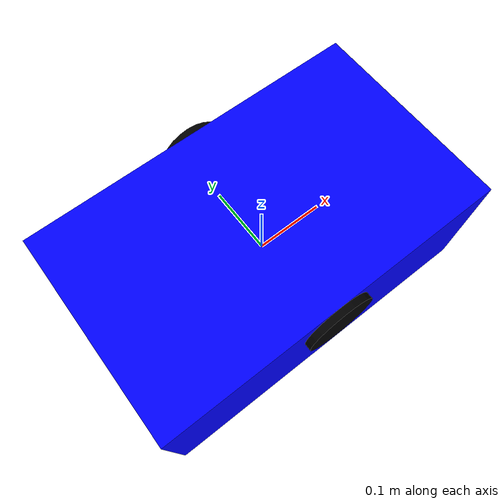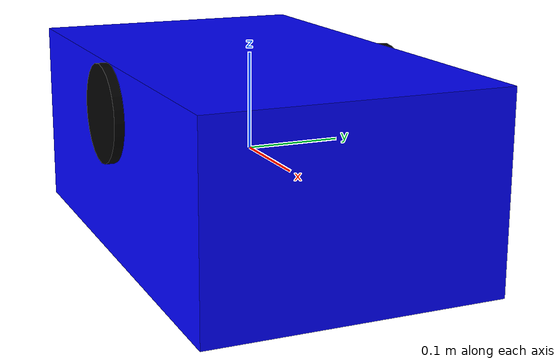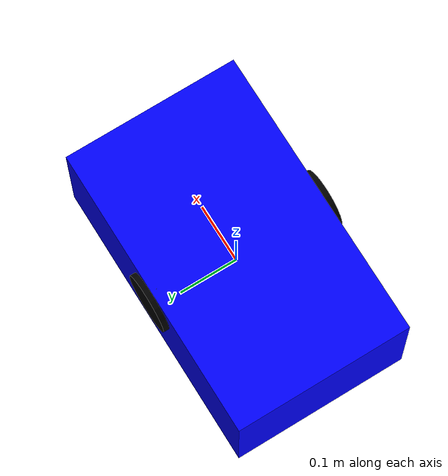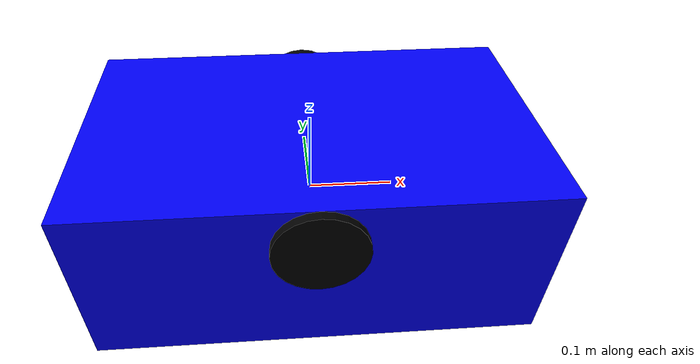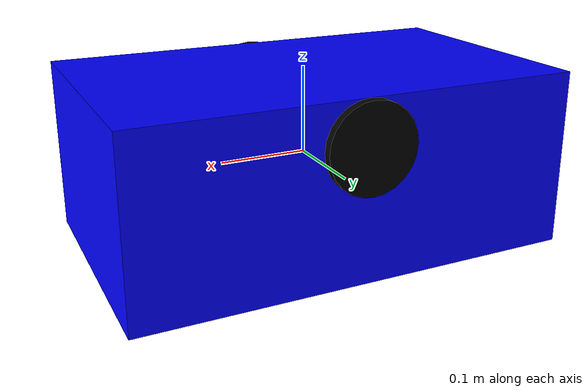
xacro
<?xml version="1.0"?>
<robot xmlns:xacro="http://www.ros.org/wiki/xacro" name="simple_robot">

  <!-- 매크로 정의: 기본적인 링크 -->
  <xacro:macro name="wheel" params="name xyz">
    <link name="${name}">
      <visual>
        <geometry>
          <cylinder radius="0.05" length="0.02"/>
        </geometry>
        <material name="black">
          <color rgba="0.0 0.0 0.0 1.0"/>
        </material>
      </visual>
      <collision>
        <geometry>
          <cylinder radius="0.05" length="0.02"/>
        </geometry>
      </collision>
      <inertial>
        <mass value="0.1"/>
        <origin xyz="0 0 0"/>
        <inertia ixx="0.001" ixy="0.0" ixz="0.0" iyy="0.001" iyz="0.0" izz="0.001"/>
      </inertial>
    </link>

    <!-- Joint 정의 -->
    <joint name="${name}_joint" type="continuous">
      <parent link="base_link"/>
      <child link="${name}"/>
      <origin xyz="${xyz}" rpy="1.5708 0 0"/>
      <axis xyz="0 0 1"/>
    </joint>
  </xacro:macro>

  <!-- 박스형 몸체 -->
  <link name="base_link">
    <visual>
      <geometry>
        <box size="0.5 0.3 0.2"/>
      </geometry>
      <material name="blue">
        <color rgba="0.0 0.0 1.0 1.0"/>
      </material>
    </visual>
    <collision>
      <geometry>
        <box size="0.5 0.3 0.2"/>
      </geometry>
    </collision>
    <inertial>
      <mass value="1.0"/>
      <origin xyz="0 0 0"/>
      <inertia ixx="0.02" ixy="0.0" ixz="0.0" iyy="0.02" iyz="0.0" izz="0.02"/>
    </inertial>
  </link>

  <!-- 왼쪽 바퀴 -->
  <xacro:wheel name="left_wheel" xyz="0 -0.15 0.05"/>

  <!-- 오른쪽 바퀴 -->
  <xacro:wheel name="right_wheel" xyz="0 0.15 0.05"/>
</robot>
